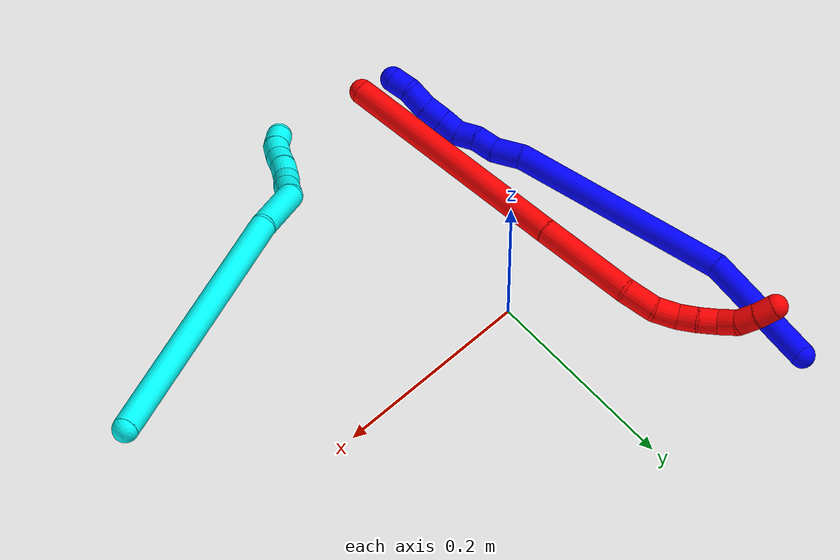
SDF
<sdf version="1.7">
 <world name="default">
  <plugin name="TubeGeneratorPlugin" filename="libtube_generator_plugin.so"/>
  <model name="photoneo_s_sensor">
   <static>1</static>
   <pose>0 0 2 1.57079 1.57079 3.14159</pose>
   <link name="link">
    <inertial><mass>0.1</mass></inertial>
    <sensor name="sensor" type="depth">
     <update_rate>30</update_rate>
     <camera>
      <horizontal_fov>1.22</horizontal_fov>
      <image><width>1920</width><height>1200</height><format>B8G8R8</format></image>
      <clip><near>0.1</near><far>4</far></clip>
      <depth_camera><output>points</output></depth_camera>
     </camera>
     <plugin name="camera_plugin" filename="libgazebo_ros_depth_camera.so">
      <baseline>0.2</baseline>
      <alwaysOn>1</alwaysOn>
      <updateRate>0.0</updateRate>
      <cameraName>camera_ir</cameraName>
      <imageTopicName>/camera/color/image_raw</imageTopicName>
      <cameraInfoTopicName>/camera/color/camera_info</cameraInfoTopicName>
      <depthImageTopicName>/camera/depth/image_raw</depthImageTopicName>
      <depthImageCameraInfoTopicName>/camera/depth/camera_info</depthImageCameraInfoTopicName>
      <pointCloudTopicName>/camera/depth/points</pointCloudTopicName>
      <frameName>fr_optical</frameName>
      <pointCloudCutoff>0.1</pointCloudCutoff>
      <pointCloudCutoffMax>2.0</pointCloudCutoffMax>
      <distortionK1>0</distortionK1>
      <distortionK2>0</distortionK2>
      <distortionK3>0</distortionK3>
      <distortionT1>0</distortionT1>
      <distortionT2>0</distortionT2>
      <CxPrime>0</CxPrime>
      <Cx>0</Cx>
      <Cy>0</Cy>
      <focalLength>0</focalLength>
      <hackBaseline>0</hackBaseline>
     </plugin>
    </sensor>
   </link>
  </model>
  <gravity>0 0 -9.8</gravity>
  <magnetic_field>6e-06 2.3e-05 -4.2e-05</magnetic_field>
  <atmosphere type="adiabatic"/>
  <physics name="default_physics" default="0" type="ode">
   <max_step_size>0.003</max_step_size>
   <real_time_factor>1</real_time_factor>
   <real_time_update_rate>1000</real_time_update_rate>
   <max_contacts>10000</max_contacts>
   <ode>
    <solver>
     <type>quick</type>
     <iters>100</iters>
     <sor>1.3</sor>
     <use_dynamic_moi_rescaling>0</use_dynamic_moi_rescaling>
    </solver>
    <constraints>
     <contact_max_correcting_vel>0</contact_max_correcting_vel>
     <contact_surface_layer>0.001</contact_surface_layer>
     <cfm>0</cfm>
     <erp>0.2</erp>
    </constraints>
   </ode>
  </physics>
  <scene><ambient>0.4 0.4 0.4 1</ambient><background>0.7 0.7 0.7 1</background><shadows>0</shadows></scene>
  <audio><device>default</device></audio>
  <spherical_coordinates>
   <surface_model>EARTH_WGS84</surface_model>
   <latitude_deg>0</latitude_deg>
   <longitude_deg>0</longitude_deg>
   <elevation>0</elevation>
   <heading_deg>0</heading_deg>
  </spherical_coordinates>
  <model name="bin">
   <static>1</static>
   <link name="bottom">
    <collision name="collision-bottom">
     <pose>0 0 -0.01 0 -0 0</pose>
     <geometry><box><size>0.8 0.6 0.02</size></box></geometry>
     <surface>
      <friction><ode><mu>100</mu><mu2>100</mu2></ode></friction>
      <contact><collide_bitmask>65535</collide_bitmask></contact>
     </surface>
    </collision>
   </link>
   <link name="west_wall">
    <collision name="collision-west_wall">
     <pose>-0.41 0 0.1 0 -0 0</pose>
     <geometry><box><size>0.02 0.6 0.2</size></box></geometry>
     <surface>
      <friction><ode><mu>100</mu><mu2>100</mu2></ode></friction>
      <contact><collide_bitmask>65535</collide_bitmask></contact>
     </surface>
    </collision>
   </link>
   <link name="east_wall">
    <collision name="collision-east_wall">
     <pose>0.41 0 0.1 0 -0 0</pose>
     <geometry><box><size>0.02 0.6 0.2</size></box></geometry>
     <surface>
      <friction><ode><mu>100</mu><mu2>100</mu2></ode></friction>
      <contact><collide_bitmask>65535</collide_bitmask></contact>
     </surface>
    </collision>
   </link>
   <link name="south_wall">
    <collision name="collision-south_wall">
     <pose>0 -0.31 0.1 0 -0 0</pose>
     <geometry><box><size>0.8 0.02 0.2</size></box></geometry>
     <surface>
      <friction><ode><mu>100</mu><mu2>100</mu2></ode></friction>
      <contact><collide_bitmask>65535</collide_bitmask></contact>
     </surface>
    </collision>
   </link>
   <link name="north_wall">
    <collision name="collision-north_wall">
     <pose>0 0.31 0.1 0 -0 0</pose>
     <geometry><box><size>0.8 0.02 0.2</size></box></geometry>
     <surface>
      <friction><ode><mu>100</mu><mu2>100</mu2></ode></friction>
      <contact><collide_bitmask>65535</collide_bitmask></contact>
     </surface>
    </collision>
   </link>
  </model>
  <model name="1">
   <static>0</static>
   <link name="1">
    <collision name="collision-cylinder-e_1_1_4">
     <pose>-0.001422 -0.04418 0.043805 0.789654 -0.02285 -0.009522</pose>
     <geometry><cylinder><radius>0.0125</radius><length>0.124463</length></cylinder></geometry>
     <surface>
      <friction><ode><mu>1.16</mu><mu2>1.16</mu2><slip1>0</slip1><slip2>0</slip2></ode></friction>
      <contact><ode><kp>1e+06</kp><kd>1</kd><max_vel>0</max_vel><min_depth>0.001</min_depth></ode></contact>
     </surface>
    </collision>
    <visual name="visual-cylinder-e_1_1_4">
     <pose>-0.001422 -0.04418 0.043805 0.789654 -0.02285 -0.009522</pose>
     <geometry><cylinder><radius>0.0125</radius><length>0.124463</length></cylinder></geometry>
     <material><ambient>0 0 1 1</ambient></material>
    </visual>
    <collision name="collision-cylinder-e_2_4_5">
     <pose>0.02208 -0.179128 0.145332 1.00438 0.227682 0.12541</pose>
     <geometry><cylinder><radius>0.0125</radius><length>0.220834</length></cylinder></geometry>
     <surface>
      <friction><ode><mu>1.16</mu><mu2>1.16</mu2><slip1>0</slip1><slip2>0</slip2></ode></friction>
      <contact><ode><kp>1e+06</kp><kd>1</kd><max_vel>0</max_vel><min_depth>0.001</min_depth></ode></contact>
     </surface>
    </collision>
    <visual name="visual-cylinder-e_2_4_5">
     <pose>0.02208 -0.179128 0.145332 1.00438 0.227682 0.12541</pose>
     <geometry><cylinder><radius>0.0125</radius><length>0.220834</length></cylinder></geometry>
     <material><ambient>0 0 1 1</ambient></material>
    </visual>
    <collision name="collision-cylinder-e_3_5_6">
     <pose>0.050264 -0.28355 0.207223 1.27446 0.224555 0.166542</pose>
     <geometry><cylinder><radius>0.0125</radius><length>0.029286</length></cylinder></geometry>
     <surface>
      <friction><ode><mu>1.16</mu><mu2>1.16</mu2><slip1>0</slip1><slip2>0</slip2></ode></friction>
      <contact><ode><kp>1e+06</kp><kd>1</kd><max_vel>0</max_vel><min_depth>0.001</min_depth></ode></contact>
     </surface>
    </collision>
    <visual name="visual-cylinder-e_3_5_6">
     <pose>0.050264 -0.28355 0.207223 1.27446 0.224555 0.166542</pose>
     <geometry><cylinder><radius>0.0125</radius><length>0.029286</length></cylinder></geometry>
     <material><ambient>0 0 1 1</ambient></material>
    </visual>
    <collision name="collision-cylinder-e_4_6_7">
     <pose>0.055926 -0.305709 0.217618 0.938942 0.224005 0.113992</pose>
     <geometry><cylinder><radius>0.0125</radius><length>0.021623</length></cylinder></geometry>
     <surface>
      <friction><ode><mu>1.16</mu><mu2>1.16</mu2><slip1>0</slip1><slip2>0</slip2></ode></friction>
      <contact><ode><kp>1e+06</kp><kd>1</kd><max_vel>0</max_vel><min_depth>0.001</min_depth></ode></contact>
     </surface>
    </collision>
    <visual name="visual-cylinder-e_4_6_7">
     <pose>0.055926 -0.305709 0.217618 0.938942 0.224005 0.113992</pose>
     <geometry><cylinder><radius>0.0125</radius><length>0.021623</length></cylinder></geometry>
     <material><ambient>0 0 1 1</ambient></material>
    </visual>
    <collision name="collision-cylinder-e_5_7_8">
     <pose>0.060904 -0.323451 0.226913 1.24996 0.258814 0.187223</pose>
     <geometry><cylinder><radius>0.0125</radius><length>0.020137</length></cylinder></geometry>
     <surface>
      <friction><ode><mu>1.16</mu><mu2>1.16</mu2><slip1>0</slip1><slip2>0</slip2></ode></friction>
      <contact><ode><kp>1e+06</kp><kd>1</kd><max_vel>0</max_vel><min_depth>0.001</min_depth></ode></contact>
     </surface>
    </collision>
    <visual name="visual-cylinder-e_5_7_8">
     <pose>0.060904 -0.323451 0.226913 1.24996 0.258814 0.187223</pose>
     <geometry><cylinder><radius>0.0125</radius><length>0.020137</length></cylinder></geometry>
     <material><ambient>0 0 1 1</ambient></material>
    </visual>
    <collision name="collision-cylinder-e_6_8_9">
     <pose>0.066939 -0.339045 0.236889 0.744023 0.352948 0.138937</pose>
     <geometry><cylinder><radius>0.0125</radius><length>0.020006</length></cylinder></geometry>
     <surface>
      <friction><ode><mu>1.16</mu><mu2>1.16</mu2><slip1>0</slip1><slip2>0</slip2></ode></friction>
      <contact><ode><kp>1e+06</kp><kd>1</kd><max_vel>0</max_vel><min_depth>0.001</min_depth></ode></contact>
     </surface>
    </collision>
    <visual name="visual-cylinder-e_6_8_9">
     <pose>0.066939 -0.339045 0.236889 0.744023 0.352948 0.138937</pose>
     <geometry><cylinder><radius>0.0125</radius><length>0.020006</length></cylinder></geometry>
     <material><ambient>0 0 1 1</ambient></material>
    </visual>
    <collision name="collision-cylinder-e_7_9_10">
     <pose>0.074292 -0.352239 0.250544 0.791821 0.385219 0.162676</pose>
     <geometry><cylinder><radius>0.0125</radius><length>0.020734</length></cylinder></geometry>
     <surface>
      <friction><ode><mu>1.16</mu><mu2>1.16</mu2><slip1>0</slip1><slip2>0</slip2></ode></friction>
      <contact><ode><kp>1e+06</kp><kd>1</kd><max_vel>0</max_vel><min_depth>0.001</min_depth></ode></contact>
     </surface>
    </collision>
    <visual name="visual-cylinder-e_7_9_10">
     <pose>0.074292 -0.352239 0.250544 0.791821 0.385219 0.162676</pose>
     <geometry><cylinder><radius>0.0125</radius><length>0.020734</length></cylinder></geometry>
     <material><ambient>0 0 1 1</ambient></material>
    </visual>
    <collision name="collision-cylinder-e_8_10_11">
     <pose>0.081663 -0.365251 0.265992 0.617423 0.314947 0.101191</pose>
     <geometry><cylinder><radius>0.0125</radius><length>0.02244</length></cylinder></geometry>
     <surface>
      <friction><ode><mu>1.16</mu><mu2>1.16</mu2><slip1>0</slip1><slip2>0</slip2></ode></friction>
      <contact><ode><kp>1e+06</kp><kd>1</kd><max_vel>0</max_vel><min_depth>0.001</min_depth></ode></contact>
     </surface>
    </collision>
    <visual name="visual-cylinder-e_8_10_11">
     <pose>0.081663 -0.365251 0.265992 0.617423 0.314947 0.101191</pose>
     <geometry><cylinder><radius>0.0125</radius><length>0.02244</length></cylinder></geometry>
     <material><ambient>0 0 1 1</ambient></material>
    </visual>
    <collision name="collision-cylinder-e_9_11_2">
     <pose>0.086818 -0.379565 0.280673 0.936882 0.164768 0.083514</pose>
     <geometry><cylinder><radius>0.0125</radius><length>0.020478</length></cylinder></geometry>
     <surface>
      <friction><ode><mu>1.16</mu><mu2>1.16</mu2><slip1>0</slip1><slip2>0</slip2></ode></friction>
      <contact><ode><kp>1e+06</kp><kd>1</kd><max_vel>0</max_vel><min_depth>0.001</min_depth></ode></contact>
     </surface>
    </collision>
    <visual name="visual-cylinder-e_9_11_2">
     <pose>0.086818 -0.379565 0.280673 0.936882 0.164768 0.083514</pose>
     <geometry><cylinder><radius>0.0125</radius><length>0.020478</length></cylinder></geometry>
     <material><ambient>0 0 1 1</ambient></material>
    </visual>
    <collision name="collision-sphere-2">
     <pose>0.088497 -0.387703 0.286655 0 -0 0</pose>
     <geometry><sphere><radius>0.0125</radius></sphere></geometry>
     <surface>
      <friction><ode><mu>1.16</mu><mu2>1.16</mu2><slip1>0</slip1><slip2>0</slip2></ode></friction>
      <contact><ode><kp>1e+06</kp><kd>1</kd><max_vel>0</max_vel><min_depth>0.001</min_depth></ode></contact>
     </surface>
    </collision>
    <visual name="visual-sphere-2">
     <pose>0.088497 -0.387703 0.286655 0 -0 0</pose>
     <geometry><sphere><radius>0.0125</radius></sphere></geometry>
     <material><ambient>0 0 1 1</ambient></material>
    </visual>
    <collision name="collision-sphere-11">
     <pose>0.085138 -0.371428 0.274691 0 -0 0</pose>
     <geometry><sphere><radius>0.0125</radius></sphere></geometry>
     <surface>
      <friction><ode><mu>1.16</mu><mu2>1.16</mu2><slip1>0</slip1><slip2>0</slip2></ode></friction>
      <contact><ode><kp>1e+06</kp><kd>1</kd><max_vel>0</max_vel><min_depth>0.001</min_depth></ode></contact>
     </surface>
    </collision>
    <visual name="visual-sphere-11">
     <pose>0.085138 -0.371428 0.274691 0 -0 0</pose>
     <geometry><sphere><radius>0.0125</radius></sphere></geometry>
     <material><ambient>0 0 1 1</ambient></material>
    </visual>
    <collision name="collision-sphere-10">
     <pose>0.078187 -0.359075 0.257294 0 -0 0</pose>
     <geometry><sphere><radius>0.0125</radius></sphere></geometry>
     <surface>
      <friction><ode><mu>1.16</mu><mu2>1.16</mu2><slip1>0</slip1><slip2>0</slip2></ode></friction>
      <contact><ode><kp>1e+06</kp><kd>1</kd><max_vel>0</max_vel><min_depth>0.001</min_depth></ode></contact>
     </surface>
    </collision>
    <visual name="visual-sphere-10">
     <pose>0.078187 -0.359075 0.257294 0 -0 0</pose>
     <geometry><sphere><radius>0.0125</radius></sphere></geometry>
     <material><ambient>0 0 1 1</ambient></material>
    </visual>
    <collision name="collision-sphere-9">
     <pose>0.070396 -0.345402 0.243795 0 -0 0</pose>
     <geometry><sphere><radius>0.0125</radius></sphere></geometry>
     <surface>
      <friction><ode><mu>1.16</mu><mu2>1.16</mu2><slip1>0</slip1><slip2>0</slip2></ode></friction>
      <contact><ode><kp>1e+06</kp><kd>1</kd><max_vel>0</max_vel><min_depth>0.001</min_depth></ode></contact>
     </surface>
    </collision>
    <visual name="visual-sphere-9">
     <pose>0.070396 -0.345402 0.243795 0 -0 0</pose>
     <geometry><sphere><radius>0.0125</radius></sphere></geometry>
     <material><ambient>0 0 1 1</ambient></material>
    </visual>
    <collision name="collision-sphere-4">
     <pose>-0.002844 -0.088359 0.08761 0 -0 0</pose>
     <geometry><sphere><radius>0.0125</radius></sphere></geometry>
     <surface>
      <friction><ode><mu>1.16</mu><mu2>1.16</mu2><slip1>0</slip1><slip2>0</slip2></ode></friction>
      <contact><ode><kp>1e+06</kp><kd>1</kd><max_vel>0</max_vel><min_depth>0.001</min_depth></ode></contact>
     </surface>
    </collision>
    <visual name="visual-sphere-4">
     <pose>-0.002844 -0.088359 0.08761 0 -0 0</pose>
     <geometry><sphere><radius>0.0125</radius></sphere></geometry>
     <material><ambient>0 0 1 1</ambient></material>
    </visual>
    <collision name="collision-sphere-1">
     <geometry><sphere><radius>0.0125</radius></sphere></geometry>
     <surface>
      <friction><ode><mu>1.16</mu><mu2>1.16</mu2><slip1>0</slip1><slip2>0</slip2></ode></friction>
      <contact><ode><kp>1e+06</kp><kd>1</kd><max_vel>0</max_vel><min_depth>0.001</min_depth></ode></contact>
     </surface>
    </collision>
    <visual name="visual-sphere-1">
     <geometry><sphere><radius>0.0125</radius></sphere></geometry>
     <material><ambient>0 0 1 1</ambient></material>
    </visual>
    <collision name="collision-sphere-8">
     <pose>0.063481 -0.332688 0.229983 0 -0 0</pose>
     <geometry><sphere><radius>0.0125</radius></sphere></geometry>
     <surface>
      <friction><ode><mu>1.16</mu><mu2>1.16</mu2><slip1>0</slip1><slip2>0</slip2></ode></friction>
      <contact><ode><kp>1e+06</kp><kd>1</kd><max_vel>0</max_vel><min_depth>0.001</min_depth></ode></contact>
     </surface>
    </collision>
    <visual name="visual-sphere-8">
     <pose>0.063481 -0.332688 0.229983 0 -0 0</pose>
     <geometry><sphere><radius>0.0125</radius></sphere></geometry>
     <material><ambient>0 0 1 1</ambient></material>
    </visual>
    <collision name="collision-sphere-5">
     <pose>0.047003 -0.269896 0.203054 0 -0 0</pose>
     <geometry><sphere><radius>0.0125</radius></sphere></geometry>
     <surface>
      <friction><ode><mu>1.16</mu><mu2>1.16</mu2><slip1>0</slip1><slip2>0</slip2></ode></friction>
      <contact><ode><kp>1e+06</kp><kd>1</kd><max_vel>0</max_vel><min_depth>0.001</min_depth></ode></contact>
     </surface>
    </collision>
    <visual name="visual-sphere-5">
     <pose>0.047003 -0.269896 0.203054 0 -0 0</pose>
     <geometry><sphere><radius>0.0125</radius></sphere></geometry>
     <material><ambient>0 0 1 1</ambient></material>
    </visual>
    <collision name="collision-sphere-6">
     <pose>0.053524 -0.297203 0.211392 0 -0 0</pose>
     <geometry><sphere><radius>0.0125</radius></sphere></geometry>
     <surface>
      <friction><ode><mu>1.16</mu><mu2>1.16</mu2><slip1>0</slip1><slip2>0</slip2></ode></friction>
      <contact><ode><kp>1e+06</kp><kd>1</kd><max_vel>0</max_vel><min_depth>0.001</min_depth></ode></contact>
     </surface>
    </collision>
    <visual name="visual-sphere-6">
     <pose>0.053524 -0.297203 0.211392 0 -0 0</pose>
     <geometry><sphere><radius>0.0125</radius></sphere></geometry>
     <material><ambient>0 0 1 1</ambient></material>
    </visual>
    <collision name="collision-sphere-7">
     <pose>0.058327 -0.314215 0.223844 0 -0 0</pose>
     <geometry><sphere><radius>0.0125</radius></sphere></geometry>
     <surface>
      <friction><ode><mu>1.16</mu><mu2>1.16</mu2><slip1>0</slip1><slip2>0</slip2></ode></friction>
      <contact><ode><kp>1e+06</kp><kd>1</kd><max_vel>0</max_vel><min_depth>0.001</min_depth></ode></contact>
     </surface>
    </collision>
    <visual name="visual-sphere-7">
     <pose>0.058327 -0.314215 0.223844 0 -0 0</pose>
     <geometry><sphere><radius>0.0125</radius></sphere></geometry>
     <material><ambient>0 0 1 1</ambient></material>
    </visual>
    <inertial>
     <pose>0.030193 -0.193078 0.149081 0 -0 0</pose>
     <mass>0.5</mass>
     <inertia>
      <ixx>0.001171</ixx>
      <ixy>0</ixy>
      <ixz>0</ixz>
      <iyy>0.000708</iyy>
      <iyz>0</iyz>
      <izz>0.000691</izz>
     </inertia>
    </inertial>
   </link>
   <pose>-0.170448 0.228309 0.01147 0.758188 -0.782379 -0.028937</pose>
  </model>
  <model name="2">
   <static>0</static>
   <link name="2">
    <collision name="collision-cylinder-e_1_1_4">
     <pose>-0.056276 0.107121 0.01596 -1.42289 -0.479212 0.415129</pose>
     <geometry><cylinder><radius>0.0125</radius><length>0.244103</length></cylinder></geometry>
     <surface>
      <friction><ode><mu>1.16</mu><mu2>1.16</mu2><slip1>0</slip1><slip2>0</slip2></ode></friction>
      <contact><ode><kp>1e+06</kp><kd>1</kd><max_vel>0</max_vel><min_depth>0.001</min_depth></ode></contact>
     </surface>
    </collision>
    <visual name="visual-cylinder-e_1_1_4">
     <pose>-0.056276 0.107121 0.01596 -1.42289 -0.479212 0.415129</pose>
     <geometry><cylinder><radius>0.0125</radius><length>0.244103</length></cylinder></geometry>
     <material><ambient>1 0 0 1</ambient></material>
    </visual>
    <collision name="collision-cylinder-e_2_4_5">
     <pose>-0.133873 0.257959 0.041416 -1.35691 -0.444761 0.360597</pose>
     <geometry><cylinder><radius>0.0125</radius><length>0.099115</length></cylinder></geometry>
     <surface>
      <friction><ode><mu>1.16</mu><mu2>1.16</mu2><slip1>0</slip1><slip2>0</slip2></ode></friction>
      <contact><ode><kp>1e+06</kp><kd>1</kd><max_vel>0</max_vel><min_depth>0.001</min_depth></ode></contact>
     </surface>
    </collision>
    <visual name="visual-cylinder-e_2_4_5">
     <pose>-0.133873 0.257959 0.041416 -1.35691 -0.444761 0.360597</pose>
     <geometry><cylinder><radius>0.0125</radius><length>0.099115</length></cylinder></geometry>
     <material><ambient>1 0 0 1</ambient></material>
    </visual>
    <collision name="collision-cylinder-e_3_5_6">
     <pose>-0.159218 0.315871 0.057468 -1.13807 -0.251859 0.161596</pose>
     <geometry><cylinder><radius>0.0125</radius><length>0.03229</length></cylinder></geometry>
     <surface>
      <friction><ode><mu>1.16</mu><mu2>1.16</mu2><slip1>0</slip1><slip2>0</slip2></ode></friction>
      <contact><ode><kp>1e+06</kp><kd>1</kd><max_vel>0</max_vel><min_depth>0.001</min_depth></ode></contact>
     </surface>
    </collision>
    <visual name="visual-cylinder-e_3_5_6">
     <pose>-0.159218 0.315871 0.057468 -1.13807 -0.251859 0.161596</pose>
     <geometry><cylinder><radius>0.0125</radius><length>0.03229</length></cylinder></geometry>
     <material><ambient>1 0 0 1</ambient></material>
    </visual>
    <collision name="collision-cylinder-e_4_6_7">
     <pose>-0.162361 0.340849 0.06922 -1.12185 0.073486 -0.046179</pose>
     <geometry><cylinder><radius>0.0125</radius><length>0.024004</length></cylinder></geometry>
     <surface>
      <friction><ode><mu>1.16</mu><mu2>1.16</mu2><slip1>0</slip1><slip2>0</slip2></ode></friction>
      <contact><ode><kp>1e+06</kp><kd>1</kd><max_vel>0</max_vel><min_depth>0.001</min_depth></ode></contact>
     </surface>
    </collision>
    <visual name="visual-cylinder-e_4_6_7">
     <pose>-0.162361 0.340849 0.06922 -1.12185 0.073486 -0.046179</pose>
     <geometry><cylinder><radius>0.0125</radius><length>0.024004</length></cylinder></geometry>
     <material><ambient>1 0 0 1</ambient></material>
    </visual>
    <collision name="collision-cylinder-e_5_7_8">
     <pose>-0.16138 0.361742 0.075118 -1.50139 0.009842 -0.009182</pose>
     <geometry><cylinder><radius>0.0125</radius><length>0.020268</length></cylinder></geometry>
     <surface>
      <friction><ode><mu>1.16</mu><mu2>1.16</mu2><slip1>0</slip1><slip2>0</slip2></ode></friction>
      <contact><ode><kp>1e+06</kp><kd>1</kd><max_vel>0</max_vel><min_depth>0.001</min_depth></ode></contact>
     </surface>
    </collision>
    <visual name="visual-cylinder-e_5_7_8">
     <pose>-0.16138 0.361742 0.075118 -1.50139 0.009842 -0.009182</pose>
     <geometry><cylinder><radius>0.0125</radius><length>0.020268</length></cylinder></geometry>
     <material><ambient>1 0 0 1</ambient></material>
    </visual>
    <collision name="collision-cylinder-e_6_8_9">
     <pose>-0.15959 0.381573 0.077535 -1.39626 0.169486 -0.142315</pose>
     <geometry><cylinder><radius>0.0125</radius><length>0.020033</length></cylinder></geometry>
     <surface>
      <friction><ode><mu>1.16</mu><mu2>1.16</mu2><slip1>0</slip1><slip2>0</slip2></ode></friction>
      <contact><ode><kp>1e+06</kp><kd>1</kd><max_vel>0</max_vel><min_depth>0.001</min_depth></ode></contact>
     </surface>
    </collision>
    <visual name="visual-cylinder-e_6_8_9">
     <pose>-0.15959 0.381573 0.077535 -1.39626 0.169486 -0.142315</pose>
     <geometry><cylinder><radius>0.0125</radius><length>0.020033</length></cylinder></geometry>
     <material><ambient>1 0 0 1</ambient></material>
    </visual>
    <collision name="collision-cylinder-e_7_9_10">
     <pose>-0.158049 0.401122 0.077282 -1.76846 -0.014787 0.018042</pose>
     <geometry><cylinder><radius>0.0125</radius><length>0.020044</length></cylinder></geometry>
     <surface>
      <friction><ode><mu>1.16</mu><mu2>1.16</mu2><slip1>0</slip1><slip2>0</slip2></ode></friction>
      <contact><ode><kp>1e+06</kp><kd>1</kd><max_vel>0</max_vel><min_depth>0.001</min_depth></ode></contact>
     </surface>
    </collision>
    <visual name="visual-cylinder-e_7_9_10">
     <pose>-0.158049 0.401122 0.077282 -1.76846 -0.014787 0.018042</pose>
     <geometry><cylinder><radius>0.0125</radius><length>0.020044</length></cylinder></geometry>
     <material><ambient>1 0 0 1</ambient></material>
    </visual>
    <collision name="collision-cylinder-e_8_10_11">
     <pose>-0.155312 0.419853 0.07167 -1.9592 0.291333 -0.430321</pose>
     <geometry><cylinder><radius>0.0125</radius><length>0.020089</length></cylinder></geometry>
     <surface>
      <friction><ode><mu>1.16</mu><mu2>1.16</mu2><slip1>0</slip1><slip2>0</slip2></ode></friction>
      <contact><ode><kp>1e+06</kp><kd>1</kd><max_vel>0</max_vel><min_depth>0.001</min_depth></ode></contact>
     </surface>
    </collision>
    <visual name="visual-cylinder-e_8_10_11">
     <pose>-0.155312 0.419853 0.07167 -1.9592 0.291333 -0.430321</pose>
     <geometry><cylinder><radius>0.0125</radius><length>0.020089</length></cylinder></geometry>
     <material><ambient>1 0 0 1</ambient></material>
    </visual>
    <collision name="collision-cylinder-e_9_11_2">
     <pose>-0.148224 0.437108 0.064401 -1.98034 0.432509 -0.646251</pose>
     <geometry><cylinder><radius>0.0125</radius><length>0.020053</length></cylinder></geometry>
     <surface>
      <friction><ode><mu>1.16</mu><mu2>1.16</mu2><slip1>0</slip1><slip2>0</slip2></ode></friction>
      <contact><ode><kp>1e+06</kp><kd>1</kd><max_vel>0</max_vel><min_depth>0.001</min_depth></ode></contact>
     </surface>
    </collision>
    <visual name="visual-cylinder-e_9_11_2">
     <pose>-0.148224 0.437108 0.064401 -1.98034 0.432509 -0.646251</pose>
     <geometry><cylinder><radius>0.0125</radius><length>0.020053</length></cylinder></geometry>
     <material><ambient>1 0 0 1</ambient></material>
    </visual>
    <collision name="collision-sphere-2">
     <pose>-0.144022 0.445458 0.060777 0 -0 0</pose>
     <geometry><sphere><radius>0.0125</radius></sphere></geometry>
     <surface>
      <friction><ode><mu>1.16</mu><mu2>1.16</mu2><slip1>0</slip1><slip2>0</slip2></ode></friction>
      <contact><ode><kp>1e+06</kp><kd>1</kd><max_vel>0</max_vel><min_depth>0.001</min_depth></ode></contact>
     </surface>
    </collision>
    <visual name="visual-sphere-2">
     <pose>-0.144022 0.445458 0.060777 0 -0 0</pose>
     <geometry><sphere><radius>0.0125</radius></sphere></geometry>
     <material><ambient>1 0 0 1</ambient></material>
    </visual>
    <collision name="collision-sphere-11">
     <pose>-0.152427 0.428757 0.068026 0 -0 0</pose>
     <geometry><sphere><radius>0.0125</radius></sphere></geometry>
     <surface>
      <friction><ode><mu>1.16</mu><mu2>1.16</mu2><slip1>0</slip1><slip2>0</slip2></ode></friction>
      <contact><ode><kp>1e+06</kp><kd>1</kd><max_vel>0</max_vel><min_depth>0.001</min_depth></ode></contact>
     </surface>
    </collision>
    <visual name="visual-sphere-11">
     <pose>-0.152427 0.428757 0.068026 0 -0 0</pose>
     <geometry><sphere><radius>0.0125</radius></sphere></geometry>
     <material><ambient>1 0 0 1</ambient></material>
    </visual>
    <collision name="collision-sphere-10">
     <pose>-0.158197 0.410948 0.075314 0 -0 0</pose>
     <geometry><sphere><radius>0.0125</radius></sphere></geometry>
     <surface>
      <friction><ode><mu>1.16</mu><mu2>1.16</mu2><slip1>0</slip1><slip2>0</slip2></ode></friction>
      <contact><ode><kp>1e+06</kp><kd>1</kd><max_vel>0</max_vel><min_depth>0.001</min_depth></ode></contact>
     </surface>
    </collision>
    <visual name="visual-sphere-10">
     <pose>-0.158197 0.410948 0.075314 0 -0 0</pose>
     <geometry><sphere><radius>0.0125</radius></sphere></geometry>
     <material><ambient>1 0 0 1</ambient></material>
    </visual>
    <collision name="collision-sphere-9">
     <pose>-0.157901 0.391296 0.079249 0 -0 0</pose>
     <geometry><sphere><radius>0.0125</radius></sphere></geometry>
     <surface>
      <friction><ode><mu>1.16</mu><mu2>1.16</mu2><slip1>0</slip1><slip2>0</slip2></ode></friction>
      <contact><ode><kp>1e+06</kp><kd>1</kd><max_vel>0</max_vel><min_depth>0.001</min_depth></ode></contact>
     </surface>
    </collision>
    <visual name="visual-sphere-9">
     <pose>-0.157901 0.391296 0.079249 0 -0 0</pose>
     <geometry><sphere><radius>0.0125</radius></sphere></geometry>
     <material><ambient>1 0 0 1</ambient></material>
    </visual>
    <collision name="collision-sphere-4">
     <pose>-0.112551 0.214242 0.03192 0 -0 0</pose>
     <geometry><sphere><radius>0.0125</radius></sphere></geometry>
     <surface>
      <friction><ode><mu>1.16</mu><mu2>1.16</mu2><slip1>0</slip1><slip2>0</slip2></ode></friction>
      <contact><ode><kp>1e+06</kp><kd>1</kd><max_vel>0</max_vel><min_depth>0.001</min_depth></ode></contact>
     </surface>
    </collision>
    <visual name="visual-sphere-4">
     <pose>-0.112551 0.214242 0.03192 0 -0 0</pose>
     <geometry><sphere><radius>0.0125</radius></sphere></geometry>
     <material><ambient>1 0 0 1</ambient></material>
    </visual>
    <collision name="collision-sphere-1">
     <geometry><sphere><radius>0.0125</radius></sphere></geometry>
     <surface>
      <friction><ode><mu>1.16</mu><mu2>1.16</mu2><slip1>0</slip1><slip2>0</slip2></ode></friction>
      <contact><ode><kp>1e+06</kp><kd>1</kd><max_vel>0</max_vel><min_depth>0.001</min_depth></ode></contact>
     </surface>
    </collision>
    <visual name="visual-sphere-1">
     <geometry><sphere><radius>0.0125</radius></sphere></geometry>
     <material><ambient>1 0 0 1</ambient></material>
    </visual>
    <collision name="collision-sphere-8">
     <pose>-0.16128 0.371851 0.075821 0 -0 0</pose>
     <geometry><sphere><radius>0.0125</radius></sphere></geometry>
     <surface>
      <friction><ode><mu>1.16</mu><mu2>1.16</mu2><slip1>0</slip1><slip2>0</slip2></ode></friction>
      <contact><ode><kp>1e+06</kp><kd>1</kd><max_vel>0</max_vel><min_depth>0.001</min_depth></ode></contact>
     </surface>
    </collision>
    <visual name="visual-sphere-8">
     <pose>-0.16128 0.371851 0.075821 0 -0 0</pose>
     <geometry><sphere><radius>0.0125</radius></sphere></geometry>
     <material><ambient>1 0 0 1</ambient></material>
    </visual>
    <collision name="collision-sphere-5">
     <pose>-0.155195 0.301676 0.050911 0 -0 0</pose>
     <geometry><sphere><radius>0.0125</radius></sphere></geometry>
     <surface>
      <friction><ode><mu>1.16</mu><mu2>1.16</mu2><slip1>0</slip1><slip2>0</slip2></ode></friction>
      <contact><ode><kp>1e+06</kp><kd>1</kd><max_vel>0</max_vel><min_depth>0.001</min_depth></ode></contact>
     </surface>
    </collision>
    <visual name="visual-sphere-5">
     <pose>-0.155195 0.301676 0.050911 0 -0 0</pose>
     <geometry><sphere><radius>0.0125</radius></sphere></geometry>
     <material><ambient>1 0 0 1</ambient></material>
    </visual>
    <collision name="collision-sphere-6">
     <pose>-0.163242 0.330065 0.064025 0 -0 0</pose>
     <geometry><sphere><radius>0.0125</radius></sphere></geometry>
     <surface>
      <friction><ode><mu>1.16</mu><mu2>1.16</mu2><slip1>0</slip1><slip2>0</slip2></ode></friction>
      <contact><ode><kp>1e+06</kp><kd>1</kd><max_vel>0</max_vel><min_depth>0.001</min_depth></ode></contact>
     </surface>
    </collision>
    <visual name="visual-sphere-6">
     <pose>-0.163242 0.330065 0.064025 0 -0 0</pose>
     <geometry><sphere><radius>0.0125</radius></sphere></geometry>
     <material><ambient>1 0 0 1</ambient></material>
    </visual>
    <collision name="collision-sphere-7">
     <pose>-0.161479 0.351633 0.074415 0 -0 0</pose>
     <geometry><sphere><radius>0.0125</radius></sphere></geometry>
     <surface>
      <friction><ode><mu>1.16</mu><mu2>1.16</mu2><slip1>0</slip1><slip2>0</slip2></ode></friction>
      <contact><ode><kp>1e+06</kp><kd>1</kd><max_vel>0</max_vel><min_depth>0.001</min_depth></ode></contact>
     </surface>
    </collision>
    <visual name="visual-sphere-7">
     <pose>-0.161479 0.351633 0.074415 0 -0 0</pose>
     <geometry><sphere><radius>0.0125</radius></sphere></geometry>
     <material><ambient>1 0 0 1</ambient></material>
    </visual>
    <inertial>
     <pose>-0.103545 0.220627 0.037748 0 -0 0</pose>
     <mass>0.5</mass>
     <inertia>
      <ixx>0.001528</ixx>
      <ixy>0</ixy>
      <ixz>0</ixz>
      <iyy>0.000919</iyy>
      <iyz>0</iyz>
      <izz>-0.000555</izz>
     </inertia>
    </inertial>
   </link>
   <pose>-0.056154 -0.272003 0.012453 2.95908 0.058207 -2.57843</pose>
  </model>
  <model name="3">
   <static>0</static>
   <link name="3">
    <collision name="collision-cylinder-e_1_1_4">
     <pose>-0.074668 -0.068619 -0.103509 2.55619 -0.541339 -1.48833</pose>
     <geometry><cylinder><radius>0.0125</radius><length>0.289814</length></cylinder></geometry>
     <surface>
      <friction><ode><mu>1.16</mu><mu2>1.16</mu2><slip1>0</slip1><slip2>0</slip2></ode></friction>
      <contact><ode><kp>1e+06</kp><kd>1</kd><max_vel>0</max_vel><min_depth>0.001</min_depth></ode></contact>
     </surface>
    </collision>
    <visual name="visual-cylinder-e_1_1_4">
     <pose>-0.074668 -0.068619 -0.103509 2.55619 -0.541339 -1.48833</pose>
     <geometry><cylinder><radius>0.0125</radius><length>0.289814</length></cylinder></geometry>
     <material><ambient>0.003922 1 0.996078 1</ambient></material>
    </visual>
    <collision name="collision-cylinder-e_2_4_5">
     <pose>-0.170346 -0.144268 -0.234894 2.89454 -0.631092 -2.41472</pose>
     <geometry><cylinder><radius>0.0125</radius><length>0.071214</length></cylinder></geometry>
     <surface>
      <friction><ode><mu>1.16</mu><mu2>1.16</mu2><slip1>0</slip1><slip2>0</slip2></ode></friction>
      <contact><ode><kp>1e+06</kp><kd>1</kd><max_vel>0</max_vel><min_depth>0.001</min_depth></ode></contact>
     </surface>
    </collision>
    <visual name="visual-cylinder-e_2_4_5">
     <pose>-0.170346 -0.144268 -0.234894 2.89454 -0.631092 -2.41472</pose>
     <geometry><cylinder><radius>0.0125</radius><length>0.071214</length></cylinder></geometry>
     <material><ambient>0.003922 1 0.996078 1</ambient></material>
    </visual>
    <collision name="collision-cylinder-e_3_5_6">
     <pose>-0.195156 -0.149627 -0.276924 -3.02406 -0.26066 2.29779</pose>
     <geometry><cylinder><radius>0.0125</radius><length>0.029501</length></cylinder></geometry>
     <surface>
      <friction><ode><mu>1.16</mu><mu2>1.16</mu2><slip1>0</slip1><slip2>0</slip2></ode></friction>
      <contact><ode><kp>1e+06</kp><kd>1</kd><max_vel>0</max_vel><min_depth>0.001</min_depth></ode></contact>
     </surface>
    </collision>
    <visual name="visual-cylinder-e_3_5_6">
     <pose>-0.195156 -0.149627 -0.276924 -3.02406 -0.26066 2.29779</pose>
     <geometry><cylinder><radius>0.0125</radius><length>0.029501</length></cylinder></geometry>
     <material><ambient>0.003922 1 0.996078 1</ambient></material>
    </visual>
    <collision name="collision-cylinder-e_4_6_7">
     <pose>-0.203264 -0.147293 -0.303071 -3.08635 -0.344213 2.82634</pose>
     <geometry><cylinder><radius>0.0125</radius><length>0.02552</length></cylinder></geometry>
     <surface>
      <friction><ode><mu>1.16</mu><mu2>1.16</mu2><slip1>0</slip1><slip2>0</slip2></ode></friction>
      <contact><ode><kp>1e+06</kp><kd>1</kd><max_vel>0</max_vel><min_depth>0.001</min_depth></ode></contact>
     </surface>
    </collision>
    <visual name="visual-cylinder-e_4_6_7">
     <pose>-0.203264 -0.147293 -0.303071 -3.08635 -0.344213 2.82634</pose>
     <geometry><cylinder><radius>0.0125</radius><length>0.02552</length></cylinder></geometry>
     <material><ambient>0.003922 1 0.996078 1</ambient></material>
    </visual>
    <collision name="collision-cylinder-e_5_7_8">
     <pose>-0.209058 -0.148089 -0.32682 3.01811 -0.125006 -1.58308</pose>
     <geometry><cylinder><radius>0.0125</radius><length>0.023879</length></cylinder></geometry>
     <surface>
      <friction><ode><mu>1.16</mu><mu2>1.16</mu2><slip1>0</slip1><slip2>0</slip2></ode></friction>
      <contact><ode><kp>1e+06</kp><kd>1</kd><max_vel>0</max_vel><min_depth>0.001</min_depth></ode></contact>
     </surface>
    </collision>
    <visual name="visual-cylinder-e_5_7_8">
     <pose>-0.209058 -0.148089 -0.32682 3.01811 -0.125006 -1.58308</pose>
     <geometry><cylinder><radius>0.0125</radius><length>0.023879</length></cylinder></geometry>
     <material><ambient>0.003922 1 0.996078 1</ambient></material>
    </visual>
    <collision name="collision-cylinder-e_6_8_9">
     <pose>-0.211581 -0.149584 -0.348551 3.138 -0.103354 -3.07208</pose>
     <geometry><cylinder><radius>0.0125</radius><length>0.020057</length></cylinder></geometry>
     <surface>
      <friction><ode><mu>1.16</mu><mu2>1.16</mu2><slip1>0</slip1><slip2>0</slip2></ode></friction>
      <contact><ode><kp>1e+06</kp><kd>1</kd><max_vel>0</max_vel><min_depth>0.001</min_depth></ode></contact>
     </surface>
    </collision>
    <visual name="visual-cylinder-e_6_8_9">
     <pose>-0.211581 -0.149584 -0.348551 3.138 -0.103354 -3.07208</pose>
     <geometry><cylinder><radius>0.0125</radius><length>0.020057</length></cylinder></geometry>
     <material><ambient>0.003922 1 0.996078 1</ambient></material>
    </visual>
    <collision name="collision-cylinder-e_7_9_10">
     <pose>-0.213805 -0.150988 -0.368367 3.00349 -0.119076 -1.42268</pose>
     <geometry><cylinder><radius>0.0125</radius><length>0.020014</length></cylinder></geometry>
     <surface>
      <friction><ode><mu>1.16</mu><mu2>1.16</mu2><slip1>0</slip1><slip2>0</slip2></ode></friction>
      <contact><ode><kp>1e+06</kp><kd>1</kd><max_vel>0</max_vel><min_depth>0.001</min_depth></ode></contact>
     </surface>
    </collision>
    <visual name="visual-cylinder-e_7_9_10">
     <pose>-0.213805 -0.150988 -0.368367 3.00349 -0.119076 -1.42268</pose>
     <geometry><cylinder><radius>0.0125</radius><length>0.020014</length></cylinder></geometry>
     <material><ambient>0.003922 1 0.996078 1</ambient></material>
    </visual>
    <collision name="collision-cylinder-e_8_10_2">
     <pose>-0.21878 -0.154757 -0.387148 2.87914 -0.388322 -1.95931</pose>
     <geometry><cylinder><radius>0.0125</radius><length>0.020001</length></cylinder></geometry>
     <surface>
      <friction><ode><mu>1.16</mu><mu2>1.16</mu2><slip1>0</slip1><slip2>0</slip2></ode></friction>
      <contact><ode><kp>1e+06</kp><kd>1</kd><max_vel>0</max_vel><min_depth>0.001</min_depth></ode></contact>
     </surface>
    </collision>
    <visual name="visual-cylinder-e_8_10_2">
     <pose>-0.21878 -0.154757 -0.387148 2.87914 -0.388322 -1.95931</pose>
     <geometry><cylinder><radius>0.0125</radius><length>0.020001</length></cylinder></geometry>
     <material><ambient>0.003922 1 0.996078 1</ambient></material>
    </visual>
    <collision name="collision-sphere-2">
     <pose>-0.222567 -0.157158 -0.396087 0 -0 0</pose>
     <geometry><sphere><radius>0.0125</radius></sphere></geometry>
     <surface>
      <friction><ode><mu>1.16</mu><mu2>1.16</mu2><slip1>0</slip1><slip2>0</slip2></ode></friction>
      <contact><ode><kp>1e+06</kp><kd>1</kd><max_vel>0</max_vel><min_depth>0.001</min_depth></ode></contact>
     </surface>
    </collision>
    <visual name="visual-sphere-2">
     <pose>-0.222567 -0.157158 -0.396087 0 -0 0</pose>
     <geometry><sphere><radius>0.0125</radius></sphere></geometry>
     <material><ambient>0.003922 1 0.996078 1</ambient></material>
    </visual>
    <collision name="collision-sphere-10">
     <pose>-0.214994 -0.152355 -0.378209 0 -0 0</pose>
     <geometry><sphere><radius>0.0125</radius></sphere></geometry>
     <surface>
      <friction><ode><mu>1.16</mu><mu2>1.16</mu2><slip1>0</slip1><slip2>0</slip2></ode></friction>
      <contact><ode><kp>1e+06</kp><kd>1</kd><max_vel>0</max_vel><min_depth>0.001</min_depth></ode></contact>
     </surface>
    </collision>
    <visual name="visual-sphere-10">
     <pose>-0.214994 -0.152355 -0.378209 0 -0 0</pose>
     <geometry><sphere><radius>0.0125</radius></sphere></geometry>
     <material><ambient>0.003922 1 0.996078 1</ambient></material>
    </visual>
    <collision name="collision-sphere-9">
     <pose>-0.212616 -0.14962 -0.358526 0 -0 0</pose>
     <geometry><sphere><radius>0.0125</radius></sphere></geometry>
     <surface>
      <friction><ode><mu>1.16</mu><mu2>1.16</mu2><slip1>0</slip1><slip2>0</slip2></ode></friction>
      <contact><ode><kp>1e+06</kp><kd>1</kd><max_vel>0</max_vel><min_depth>0.001</min_depth></ode></contact>
     </surface>
    </collision>
    <visual name="visual-sphere-9">
     <pose>-0.212616 -0.14962 -0.358526 0 -0 0</pose>
     <geometry><sphere><radius>0.0125</radius></sphere></geometry>
     <material><ambient>0.003922 1 0.996078 1</ambient></material>
    </visual>
    <collision name="collision-sphere-4">
     <pose>-0.149337 -0.137238 -0.207019 0 -0 0</pose>
     <geometry><sphere><radius>0.0125</radius></sphere></geometry>
     <surface>
      <friction><ode><mu>1.16</mu><mu2>1.16</mu2><slip1>0</slip1><slip2>0</slip2></ode></friction>
      <contact><ode><kp>1e+06</kp><kd>1</kd><max_vel>0</max_vel><min_depth>0.001</min_depth></ode></contact>
     </surface>
    </collision>
    <visual name="visual-sphere-4">
     <pose>-0.149337 -0.137238 -0.207019 0 -0 0</pose>
     <geometry><sphere><radius>0.0125</radius></sphere></geometry>
     <material><ambient>0.003922 1 0.996078 1</ambient></material>
    </visual>
    <collision name="collision-sphere-1">
     <geometry><sphere><radius>0.0125</radius></sphere></geometry>
     <surface>
      <friction><ode><mu>1.16</mu><mu2>1.16</mu2><slip1>0</slip1><slip2>0</slip2></ode></friction>
      <contact><ode><kp>1e+06</kp><kd>1</kd><max_vel>0</max_vel><min_depth>0.001</min_depth></ode></contact>
     </surface>
    </collision>
    <visual name="visual-sphere-1">
     <geometry><sphere><radius>0.0125</radius></sphere></geometry>
     <material><ambient>0.003922 1 0.996078 1</ambient></material>
    </visual>
    <collision name="collision-sphere-8">
     <pose>-0.210547 -0.149548 -0.338576 0 -0 0</pose>
     <geometry><sphere><radius>0.0125</radius></sphere></geometry>
     <surface>
      <friction><ode><mu>1.16</mu><mu2>1.16</mu2><slip1>0</slip1><slip2>0</slip2></ode></friction>
      <contact><ode><kp>1e+06</kp><kd>1</kd><max_vel>0</max_vel><min_depth>0.001</min_depth></ode></contact>
     </surface>
    </collision>
    <visual name="visual-sphere-8">
     <pose>-0.210547 -0.149548 -0.338576 0 -0 0</pose>
     <geometry><sphere><radius>0.0125</radius></sphere></geometry>
     <material><ambient>0.003922 1 0.996078 1</ambient></material>
    </visual>
    <collision name="collision-sphere-5">
     <pose>-0.191355 -0.151299 -0.26277 0 -0 0</pose>
     <geometry><sphere><radius>0.0125</radius></sphere></geometry>
     <surface>
      <friction><ode><mu>1.16</mu><mu2>1.16</mu2><slip1>0</slip1><slip2>0</slip2></ode></friction>
      <contact><ode><kp>1e+06</kp><kd>1</kd><max_vel>0</max_vel><min_depth>0.001</min_depth></ode></contact>
     </surface>
    </collision>
    <visual name="visual-sphere-5">
     <pose>-0.191355 -0.151299 -0.26277 0 -0 0</pose>
     <geometry><sphere><radius>0.0125</radius></sphere></geometry>
     <material><ambient>0.003922 1 0.996078 1</ambient></material>
    </visual>
    <collision name="collision-sphere-6">
     <pose>-0.198958 -0.147956 -0.291078 0 -0 0</pose>
     <geometry><sphere><radius>0.0125</radius></sphere></geometry>
     <surface>
      <friction><ode><mu>1.16</mu><mu2>1.16</mu2><slip1>0</slip1><slip2>0</slip2></ode></friction>
      <contact><ode><kp>1e+06</kp><kd>1</kd><max_vel>0</max_vel><min_depth>0.001</min_depth></ode></contact>
     </surface>
    </collision>
    <visual name="visual-sphere-6">
     <pose>-0.198958 -0.147956 -0.291078 0 -0 0</pose>
     <geometry><sphere><radius>0.0125</radius></sphere></geometry>
     <material><ambient>0.003922 1 0.996078 1</ambient></material>
    </visual>
    <collision name="collision-sphere-7">
     <pose>-0.20757 -0.14663 -0.315064 0 -0 0</pose>
     <geometry><sphere><radius>0.0125</radius></sphere></geometry>
     <surface>
      <friction><ode><mu>1.16</mu><mu2>1.16</mu2><slip1>0</slip1><slip2>0</slip2></ode></friction>
      <contact><ode><kp>1e+06</kp><kd>1</kd><max_vel>0</max_vel><min_depth>0.001</min_depth></ode></contact>
     </surface>
    </collision>
    <visual name="visual-sphere-7">
     <pose>-0.20757 -0.14663 -0.315064 0 -0 0</pose>
     <geometry><sphere><radius>0.0125</radius></sphere></geometry>
     <material><ambient>0.003922 1 0.996078 1</ambient></material>
    </visual>
    <inertial>
     <pose>-0.125212 -0.101974 -0.185082 0 -0 0</pose>
     <mass>0.5</mass>
     <inertia>
      <ixx>-0.001661</ixx>
      <ixy>0</ixy>
      <ixz>0</ixz>
      <iyy>-0.001302</iyy>
      <iyz>0</iyz>
      <izz>0.002015</izz>
     </inertia>
    </inertial>
   </link>
   <pose>0.412368 -0.061111 0.216907 -0.954571 -0.54048 -0.701927</pose>
  </model>
 </world>
</sdf>
